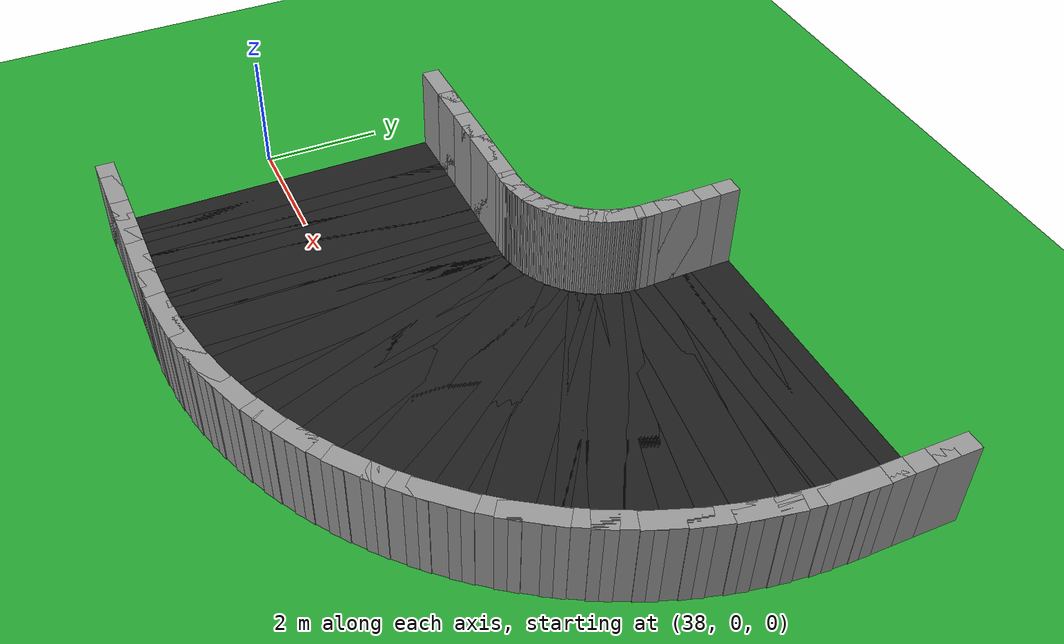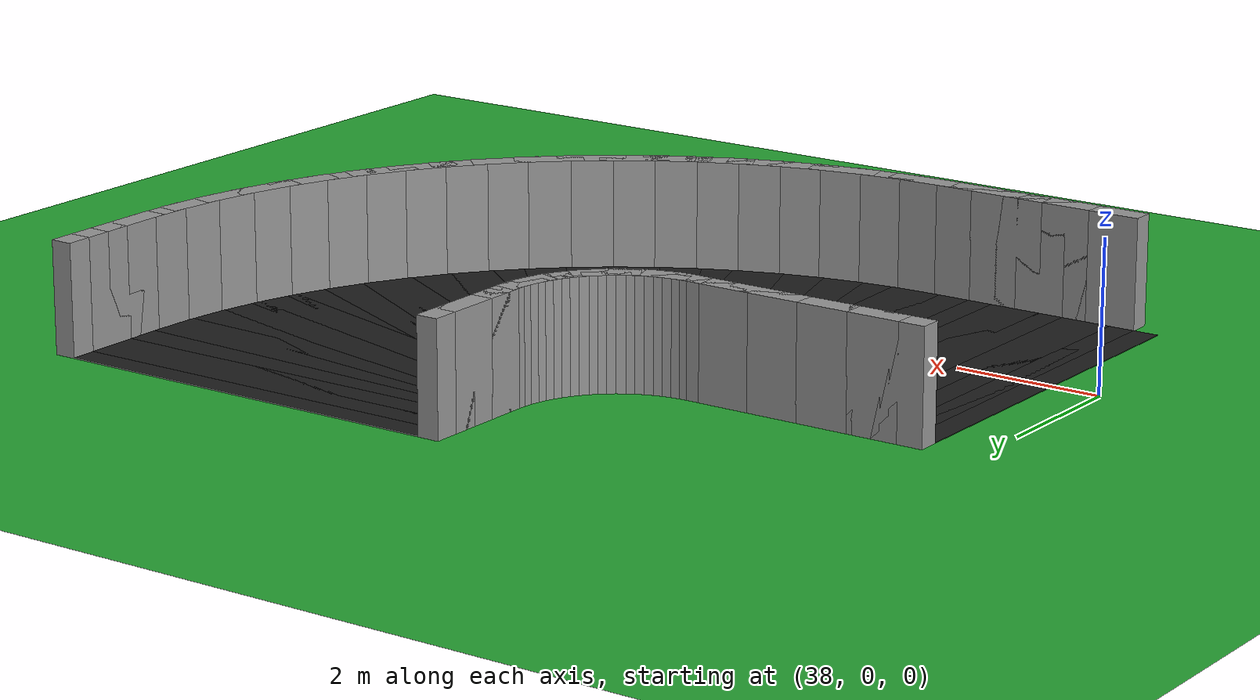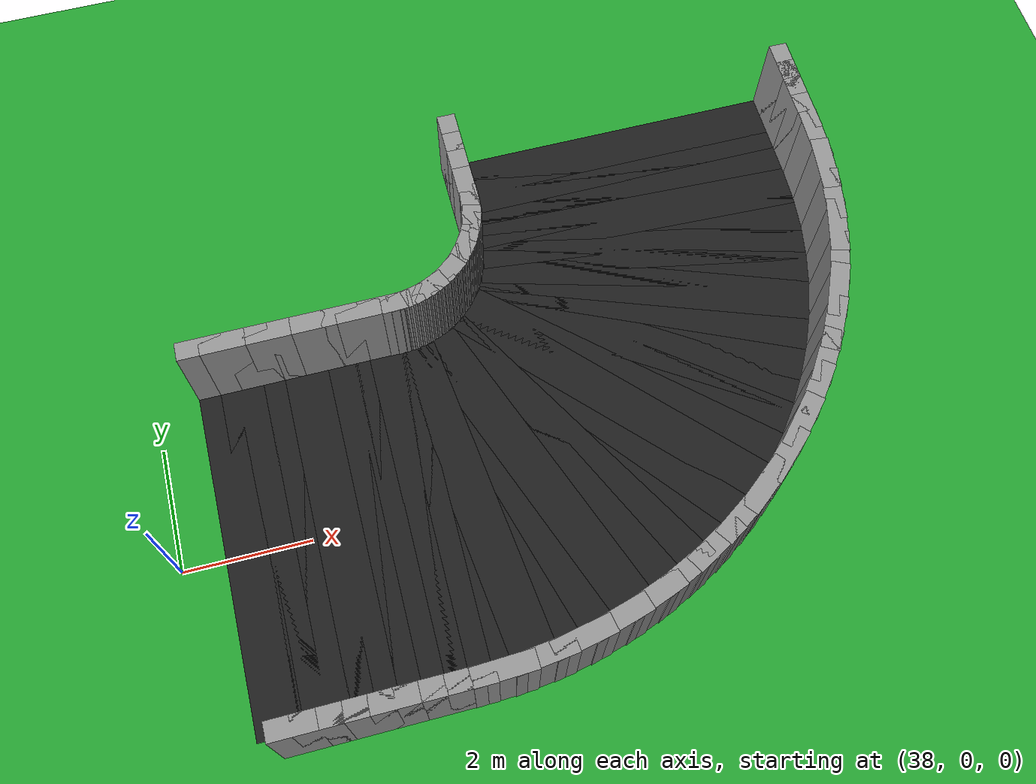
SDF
<sdf version="1.6">
 <world name="loop_speedloop">
  <include><uri>model://sun</uri></include>
  <model name="ground_plane">
   <static>true</static>
   <link name="link">
    <collision name="collision">
     <surface><friction><ode><mu>100</mu><mu2>50</mu2></ode></friction></surface>
     <geometry><plane><normal>0 0 1</normal><size>120 120</size></plane></geometry>
    </collision>
    <visual name="visual">
     <geometry><plane><normal>0 0 1</normal><size>120 120</size></plane></geometry>
     <material>
      <script><uri>file://media/materials/scripts/gazebo.material</uri><name>Gazebo/Green</name></script>
     </material>
    </visual>
   </link>
  </model>
  <model name="asphalt_111">
   <static>true</static>
   <pose>39.025 0.000 0.005 0 0 0.00000</pose>
   <link name="link">
    <visual name="visual">
     <geometry><box><size>0.710 5.500 0.010</size></box></geometry>
     <material>
      <script><uri>file://media/materials/scripts/gazebo.material</uri><name>Gazebo/Black</name></script>
     </material>
    </visual>
   </link>
  </model>
  <model name="curbL_111">
   <static>true</static>
   <pose>39.025 2.900 0.750 0 0 0.00000</pose>
   <link name="link">
    <collision name="collision"><geometry><box><size>0.710 0.300 1.500</size></box></geometry></collision>
    <visual name="visual">
     <geometry><box><size>0.710 0.300 1.500</size></box></geometry>
     <material>
      <script><uri>file://media/materials/scripts/gazebo.material</uri><name>Gazebo/Grey</name></script>
     </material>
    </visual>
   </link>
  </model>
  <model name="asphalt_112">
   <static>true</static>
   <pose>39.375 0.000 0.005 0 0 0.00000</pose>
   <link name="link">
    <visual name="visual">
     <geometry><box><size>0.710 5.500 0.010</size></box></geometry>
     <material>
      <script><uri>file://media/materials/scripts/gazebo.material</uri><name>Gazebo/Black</name></script>
     </material>
    </visual>
   </link>
  </model>
  <model name="curbL_112">
   <static>true</static>
   <pose>39.375 2.900 0.750 0 0 0.00000</pose>
   <link name="link">
    <collision name="collision"><geometry><box><size>0.710 0.300 1.500</size></box></geometry></collision>
    <visual name="visual">
     <geometry><box><size>0.710 0.300 1.500</size></box></geometry>
     <material>
      <script><uri>file://media/materials/scripts/gazebo.material</uri><name>Gazebo/Grey</name></script>
     </material>
    </visual>
   </link>
  </model>
  <model name="curbR_112">
   <static>true</static>
   <pose>39.375 -2.900 0.750 0 0 0.00000</pose>
   <link name="link">
    <collision name="collision"><geometry><box><size>0.710 0.300 1.500</size></box></geometry></collision>
    <visual name="visual">
     <geometry><box><size>0.710 0.300 1.500</size></box></geometry>
     <material>
      <script><uri>file://media/materials/scripts/gazebo.material</uri><name>Gazebo/Grey</name></script>
     </material>
    </visual>
   </link>
  </model>
  <model name="asphalt_113">
   <static>true</static>
   <pose>39.725 0.000 0.005 0 0 0.00000</pose>
   <link name="link">
    <visual name="visual">
     <geometry><box><size>0.710 5.500 0.010</size></box></geometry>
     <material>
      <script><uri>file://media/materials/scripts/gazebo.material</uri><name>Gazebo/Black</name></script>
     </material>
    </visual>
   </link>
  </model>
  <model name="curbL_113">
   <static>true</static>
   <pose>39.725 2.900 0.750 0 0 0.00000</pose>
   <link name="link">
    <collision name="collision"><geometry><box><size>0.710 0.300 1.500</size></box></geometry></collision>
    <visual name="visual">
     <geometry><box><size>0.710 0.300 1.500</size></box></geometry>
     <material>
      <script><uri>file://media/materials/scripts/gazebo.material</uri><name>Gazebo/Grey</name></script>
     </material>
    </visual>
   </link>
  </model>
  <model name="curbR_113">
   <static>true</static>
   <pose>39.725 -2.900 0.750 0 0 0.00000</pose>
   <link name="link">
    <collision name="collision"><geometry><box><size>0.710 0.300 1.500</size></box></geometry></collision>
    <visual name="visual">
     <geometry><box><size>0.710 0.300 1.500</size></box></geometry>
     <material>
      <script><uri>file://media/materials/scripts/gazebo.material</uri><name>Gazebo/Grey</name></script>
     </material>
    </visual>
   </link>
  </model>
  <model name="asphalt_114">
   <static>true</static>
   <pose>40.075 0.000 0.005 0 0 0.00000</pose>
   <link name="link">
    <visual name="visual">
     <geometry><box><size>0.710 5.500 0.010</size></box></geometry>
     <material>
      <script><uri>file://media/materials/scripts/gazebo.material</uri><name>Gazebo/Black</name></script>
     </material>
    </visual>
   </link>
  </model>
  <model name="curbL_114">
   <static>true</static>
   <pose>40.075 2.900 0.750 0 0 0.00000</pose>
   <link name="link">
    <collision name="collision"><geometry><box><size>0.710 0.300 1.500</size></box></geometry></collision>
    <visual name="visual">
     <geometry><box><size>0.710 0.300 1.500</size></box></geometry>
     <material>
      <script><uri>file://media/materials/scripts/gazebo.material</uri><name>Gazebo/Grey</name></script>
     </material>
    </visual>
   </link>
  </model>
  <model name="curbR_114">
   <static>true</static>
   <pose>40.075 -2.900 0.750 0 0 0.00000</pose>
   <link name="link">
    <collision name="collision"><geometry><box><size>0.710 0.300 1.500</size></box></geometry></collision>
    <visual name="visual">
     <geometry><box><size>0.710 0.300 1.500</size></box></geometry>
     <material>
      <script><uri>file://media/materials/scripts/gazebo.material</uri><name>Gazebo/Grey</name></script>
     </material>
    </visual>
   </link>
  </model>
  <model name="asphalt_115">
   <static>true</static>
   <pose>40.425 0.000 0.005 0 0 0.00000</pose>
   <link name="link">
    <visual name="visual">
     <geometry><box><size>0.710 5.500 0.010</size></box></geometry>
     <material>
      <script><uri>file://media/materials/scripts/gazebo.material</uri><name>Gazebo/Black</name></script>
     </material>
    </visual>
   </link>
  </model>
  <model name="curbL_115">
   <static>true</static>
   <pose>40.425 2.900 0.750 0 0 0.00000</pose>
   <link name="link">
    <collision name="collision"><geometry><box><size>0.710 0.300 1.500</size></box></geometry></collision>
    <visual name="visual">
     <geometry><box><size>0.710 0.300 1.500</size></box></geometry>
     <material>
      <script><uri>file://media/materials/scripts/gazebo.material</uri><name>Gazebo/Grey</name></script>
     </material>
    </visual>
   </link>
  </model>
  <model name="curbR_115">
   <static>true</static>
   <pose>40.425 -2.900 0.750 0 0 0.00000</pose>
   <link name="link">
    <collision name="collision"><geometry><box><size>0.710 0.300 1.500</size></box></geometry></collision>
    <visual name="visual">
     <geometry><box><size>0.710 0.300 1.500</size></box></geometry>
     <material>
      <script><uri>file://media/materials/scripts/gazebo.material</uri><name>Gazebo/Grey</name></script>
     </material>
    </visual>
   </link>
  </model>
  <model name="asphalt_116">
   <static>true</static>
   <pose>40.775 0.000 0.005 0 0 0.00000</pose>
   <link name="link">
    <visual name="visual">
     <geometry><box><size>0.710 5.500 0.010</size></box></geometry>
     <material>
      <script><uri>file://media/materials/scripts/gazebo.material</uri><name>Gazebo/Black</name></script>
     </material>
    </visual>
   </link>
  </model>
  <model name="curbL_116">
   <static>true</static>
   <pose>40.775 2.900 0.750 0 0 0.00000</pose>
   <link name="link">
    <collision name="collision"><geometry><box><size>0.710 0.300 1.500</size></box></geometry></collision>
    <visual name="visual">
     <geometry><box><size>0.710 0.300 1.500</size></box></geometry>
     <material>
      <script><uri>file://media/materials/scripts/gazebo.material</uri><name>Gazebo/Grey</name></script>
     </material>
    </visual>
   </link>
  </model>
  <model name="curbR_116">
   <static>true</static>
   <pose>40.775 -2.900 0.750 0 0 0.00000</pose>
   <link name="link">
    <collision name="collision"><geometry><box><size>0.710 0.300 1.500</size></box></geometry></collision>
    <visual name="visual">
     <geometry><box><size>0.710 0.300 1.500</size></box></geometry>
     <material>
      <script><uri>file://media/materials/scripts/gazebo.material</uri><name>Gazebo/Grey</name></script>
     </material>
    </visual>
   </link>
  </model>
  <model name="asphalt_117">
   <static>true</static>
   <pose>41.125 0.000 0.005 0 0 0.00000</pose>
   <link name="link">
    <visual name="visual">
     <geometry><box><size>0.710 5.500 0.010</size></box></geometry>
     <material>
      <script><uri>file://media/materials/scripts/gazebo.material</uri><name>Gazebo/Black</name></script>
     </material>
    </visual>
   </link>
  </model>
  <model name="curbL_117">
   <static>true</static>
   <pose>41.125 2.900 0.750 0 0 0.00000</pose>
   <link name="link">
    <collision name="collision"><geometry><box><size>0.710 0.300 1.500</size></box></geometry></collision>
    <visual name="visual">
     <geometry><box><size>0.710 0.300 1.500</size></box></geometry>
     <material>
      <script><uri>file://media/materials/scripts/gazebo.material</uri><name>Gazebo/Grey</name></script>
     </material>
    </visual>
   </link>
  </model>
  <model name="curbR_117">
   <static>true</static>
   <pose>41.125 -2.900 0.750 0 0 0.00000</pose>
   <link name="link">
    <collision name="collision"><geometry><box><size>0.710 0.300 1.500</size></box></geometry></collision>
    <visual name="visual">
     <geometry><box><size>0.710 0.300 1.500</size></box></geometry>
     <material>
      <script><uri>file://media/materials/scripts/gazebo.material</uri><name>Gazebo/Grey</name></script>
     </material>
    </visual>
   </link>
  </model>
  <model name="asphalt_118">
   <static>true</static>
   <pose>41.475 0.000 0.005 0 0 0.00000</pose>
   <link name="link">
    <visual name="visual">
     <geometry><box><size>0.710 5.500 0.010</size></box></geometry>
     <material>
      <script><uri>file://media/materials/scripts/gazebo.material</uri><name>Gazebo/Black</name></script>
     </material>
    </visual>
   </link>
  </model>
  <model name="curbL_118">
   <static>true</static>
   <pose>41.475 2.900 0.750 0 0 0.00000</pose>
   <link name="link">
    <collision name="collision"><geometry><box><size>0.710 0.300 1.500</size></box></geometry></collision>
    <visual name="visual">
     <geometry><box><size>0.710 0.300 1.500</size></box></geometry>
     <material>
      <script><uri>file://media/materials/scripts/gazebo.material</uri><name>Gazebo/Grey</name></script>
     </material>
    </visual>
   </link>
  </model>
  <model name="curbR_118">
   <static>true</static>
   <pose>41.475 -2.900 0.750 0 0 0.00000</pose>
   <link name="link">
    <collision name="collision"><geometry><box><size>0.710 0.300 1.500</size></box></geometry></collision>
    <visual name="visual">
     <geometry><box><size>0.710 0.300 1.500</size></box></geometry>
     <material>
      <script><uri>file://media/materials/scripts/gazebo.material</uri><name>Gazebo/Grey</name></script>
     </material>
    </visual>
   </link>
  </model>
  <model name="asphalt_119">
   <static>true</static>
   <pose>41.825 0.000 0.005 0 0 0.00000</pose>
   <link name="link">
    <visual name="visual">
     <geometry><box><size>0.710 5.500 0.010</size></box></geometry>
     <material>
      <script><uri>file://media/materials/scripts/gazebo.material</uri><name>Gazebo/Black</name></script>
     </material>
    </visual>
   </link>
  </model>
  <model name="curbL_119">
   <static>true</static>
   <pose>41.825 2.900 0.750 0 0 0.00000</pose>
   <link name="link">
    <collision name="collision"><geometry><box><size>0.710 0.300 1.500</size></box></geometry></collision>
    <visual name="visual">
     <geometry><box><size>0.710 0.300 1.500</size></box></geometry>
     <material>
      <script><uri>file://media/materials/scripts/gazebo.material</uri><name>Gazebo/Grey</name></script>
     </material>
    </visual>
   </link>
  </model>
  <model name="curbR_119">
   <static>true</static>
   <pose>41.825 -2.900 0.750 0 0 0.00000</pose>
   <link name="link">
    <collision name="collision"><geometry><box><size>0.710 0.300 1.500</size></box></geometry></collision>
    <visual name="visual">
     <geometry><box><size>0.710 0.300 1.500</size></box></geometry>
     <material>
      <script><uri>file://media/materials/scripts/gazebo.material</uri><name>Gazebo/Grey</name></script>
     </material>
    </visual>
   </link>
  </model>
  <model name="asphalt_120">
   <static>true</static>
   <pose>42.177 0.007 0.005 0 0 0.03927</pose>
   <link name="link">
    <visual name="visual">
     <geometry><box><size>0.713 5.500 0.010</size></box></geometry>
     <material>
      <script><uri>file://media/materials/scripts/gazebo.material</uri><name>Gazebo/Black</name></script>
     </material>
    </visual>
   </link>
  </model>
  <model name="curbL_120">
   <static>true</static>
   <pose>42.063 2.902 0.750 0 0 0.03927</pose>
   <link name="link">
    <collision name="collision"><geometry><box><size>0.486 0.300 1.500</size></box></geometry></collision>
    <visual name="visual">
     <geometry><box><size>0.486 0.300 1.500</size></box></geometry>
     <material>
      <script><uri>file://media/materials/scripts/gazebo.material</uri><name>Gazebo/Grey</name></script>
     </material>
    </visual>
   </link>
  </model>
  <model name="curbR_120">
   <static>true</static>
   <pose>42.290 -2.889 0.750 0 0 0.03927</pose>
   <link name="link">
    <collision name="collision"><geometry><box><size>0.941 0.300 1.500</size></box></geometry></collision>
    <visual name="visual">
     <geometry><box><size>0.941 0.300 1.500</size></box></geometry>
     <material>
      <script><uri>file://media/materials/scripts/gazebo.material</uri><name>Gazebo/Grey</name></script>
     </material>
    </visual>
   </link>
  </model>
  <model name="asphalt_121">
   <static>true</static>
   <pose>42.529 0.035 0.005 0 0 0.11781</pose>
   <link name="link">
    <visual name="visual">
     <geometry><box><size>0.713 5.500 0.010</size></box></geometry>
     <material>
      <script><uri>file://media/materials/scripts/gazebo.material</uri><name>Gazebo/Black</name></script>
     </material>
    </visual>
   </link>
  </model>
  <model name="curbL_121">
   <static>true</static>
   <pose>42.188 2.912 0.750 0 0 0.11781</pose>
   <link name="link">
    <collision name="collision"><geometry><box><size>0.486 0.300 1.500</size></box></geometry></collision>
    <visual name="visual">
     <geometry><box><size>0.486 0.300 1.500</size></box></geometry>
     <material>
      <script><uri>file://media/materials/scripts/gazebo.material</uri><name>Gazebo/Grey</name></script>
     </material>
    </visual>
   </link>
  </model>
  <model name="curbR_121">
   <static>true</static>
   <pose>42.869 -2.843 0.750 0 0 0.11781</pose>
   <link name="link">
    <collision name="collision"><geometry><box><size>0.941 0.300 1.500</size></box></geometry></collision>
    <visual name="visual">
     <geometry><box><size>0.941 0.300 1.500</size></box></geometry>
     <material>
      <script><uri>file://media/materials/scripts/gazebo.material</uri><name>Gazebo/Grey</name></script>
     </material>
    </visual>
   </link>
  </model>
  <model name="asphalt_122">
   <static>true</static>
   <pose>42.877 0.090 0.005 0 0 0.19635</pose>
   <link name="link">
    <visual name="visual">
     <geometry><box><size>0.713 5.500 0.010</size></box></geometry>
     <material>
      <script><uri>file://media/materials/scripts/gazebo.material</uri><name>Gazebo/Black</name></script>
     </material>
    </visual>
   </link>
  </model>
  <model name="curbL_122">
   <static>true</static>
   <pose>42.312 2.932 0.750 0 0 0.19635</pose>
   <link name="link">
    <collision name="collision"><geometry><box><size>0.486 0.300 1.500</size></box></geometry></collision>
    <visual name="visual">
     <geometry><box><size>0.486 0.300 1.500</size></box></geometry>
     <material>
      <script><uri>file://media/materials/scripts/gazebo.material</uri><name>Gazebo/Grey</name></script>
     </material>
    </visual>
   </link>
  </model>
  <model name="curbR_122">
   <static>true</static>
   <pose>43.443 -2.752 0.750 0 0 0.19635</pose>
   <link name="link">
    <collision name="collision"><geometry><box><size>0.941 0.300 1.500</size></box></geometry></collision>
    <visual name="visual">
     <geometry><box><size>0.941 0.300 1.500</size></box></geometry>
     <material>
      <script><uri>file://media/materials/scripts/gazebo.material</uri><name>Gazebo/Grey</name></script>
     </material>
    </visual>
   </link>
  </model>
  <model name="asphalt_123">
   <static>true</static>
   <pose>43.221 0.172 0.005 0 0 0.27489</pose>
   <link name="link">
    <visual name="visual">
     <geometry><box><size>0.713 5.500 0.010</size></box></geometry>
     <material>
      <script><uri>file://media/materials/scripts/gazebo.material</uri><name>Gazebo/Black</name></script>
     </material>
    </visual>
   </link>
  </model>
  <model name="curbL_123">
   <static>true</static>
   <pose>42.434 2.961 0.750 0 0 0.27489</pose>
   <link name="link">
    <collision name="collision"><geometry><box><size>0.486 0.300 1.500</size></box></geometry></collision>
    <visual name="visual">
     <geometry><box><size>0.486 0.300 1.500</size></box></geometry>
     <material>
      <script><uri>file://media/materials/scripts/gazebo.material</uri><name>Gazebo/Grey</name></script>
     </material>
    </visual>
   </link>
  </model>
  <model name="curbR_123">
   <static>true</static>
   <pose>44.007 -2.617 0.750 0 0 0.27489</pose>
   <link name="link">
    <collision name="collision"><geometry><box><size>0.941 0.300 1.500</size></box></geometry></collision>
    <visual name="visual">
     <geometry><box><size>0.941 0.300 1.500</size></box></geometry>
     <material>
      <script><uri>file://media/materials/scripts/gazebo.material</uri><name>Gazebo/Grey</name></script>
     </material>
    </visual>
   </link>
  </model>
  <model name="asphalt_124">
   <static>true</static>
   <pose>43.557 0.281 0.005 0 0 0.35343</pose>
   <link name="link">
    <visual name="visual">
     <geometry><box><size>0.713 5.500 0.010</size></box></geometry>
     <material>
      <script><uri>file://media/materials/scripts/gazebo.material</uri><name>Gazebo/Black</name></script>
     </material>
    </visual>
   </link>
  </model>
  <model name="curbL_124">
   <static>true</static>
   <pose>42.554 3.000 0.750 0 0 0.35343</pose>
   <link name="link">
    <collision name="collision"><geometry><box><size>0.486 0.300 1.500</size></box></geometry></collision>
    <visual name="visual">
     <geometry><box><size>0.486 0.300 1.500</size></box></geometry>
     <material>
      <script><uri>file://media/materials/scripts/gazebo.material</uri><name>Gazebo/Grey</name></script>
     </material>
    </visual>
   </link>
  </model>
  <model name="curbR_124">
   <static>true</static>
   <pose>44.560 -2.437 0.750 0 0 0.35343</pose>
   <link name="link">
    <collision name="collision"><geometry><box><size>0.941 0.300 1.500</size></box></geometry></collision>
    <visual name="visual">
     <geometry><box><size>0.941 0.300 1.500</size></box></geometry>
     <material>
      <script><uri>file://media/materials/scripts/gazebo.material</uri><name>Gazebo/Grey</name></script>
     </material>
    </visual>
   </link>
  </model>
  <model name="asphalt_125">
   <static>true</static>
   <pose>43.883 0.417 0.005 0 0 0.43197</pose>
   <link name="link">
    <visual name="visual">
     <geometry><box><size>0.713 5.500 0.010</size></box></geometry>
     <material>
      <script><uri>file://media/materials/scripts/gazebo.material</uri><name>Gazebo/Black</name></script>
     </material>
    </visual>
   </link>
  </model>
  <model name="curbL_125">
   <static>true</static>
   <pose>42.670 3.048 0.750 0 0 0.43197</pose>
   <link name="link">
    <collision name="collision"><geometry><box><size>0.486 0.300 1.500</size></box></geometry></collision>
    <visual name="visual">
     <geometry><box><size>0.486 0.300 1.500</size></box></geometry>
     <material>
      <script><uri>file://media/materials/scripts/gazebo.material</uri><name>Gazebo/Grey</name></script>
     </material>
    </visual>
   </link>
  </model>
  <model name="curbR_125">
   <static>true</static>
   <pose>45.096 -2.215 0.750 0 0 0.43197</pose>
   <link name="link">
    <collision name="collision"><geometry><box><size>0.941 0.300 1.500</size></box></geometry></collision>
    <visual name="visual">
     <geometry><box><size>0.941 0.300 1.500</size></box></geometry>
     <material>
      <script><uri>file://media/materials/scripts/gazebo.material</uri><name>Gazebo/Grey</name></script>
     </material>
    </visual>
   </link>
  </model>
  <model name="asphalt_126">
   <static>true</static>
   <pose>44.198 0.577 0.005 0 0 0.51051</pose>
   <link name="link">
    <visual name="visual">
     <geometry><box><size>0.713 5.500 0.010</size></box></geometry>
     <material>
      <script><uri>file://media/materials/scripts/gazebo.material</uri><name>Gazebo/Black</name></script>
     </material>
    </visual>
   </link>
  </model>
  <model name="curbL_126">
   <static>true</static>
   <pose>42.782 3.105 0.750 0 0 0.51051</pose>
   <link name="link">
    <collision name="collision"><geometry><box><size>0.486 0.300 1.500</size></box></geometry></collision>
    <visual name="visual">
     <geometry><box><size>0.486 0.300 1.500</size></box></geometry>
     <material>
      <script><uri>file://media/materials/scripts/gazebo.material</uri><name>Gazebo/Grey</name></script>
     </material>
    </visual>
   </link>
  </model>
  <model name="curbR_126">
   <static>true</static>
   <pose>45.614 -1.951 0.750 0 0 0.51051</pose>
   <link name="link">
    <collision name="collision"><geometry><box><size>0.941 0.300 1.500</size></box></geometry></collision>
    <visual name="visual">
     <geometry><box><size>0.941 0.300 1.500</size></box></geometry>
     <material>
      <script><uri>file://media/materials/scripts/gazebo.material</uri><name>Gazebo/Grey</name></script>
     </material>
    </visual>
   </link>
  </model>
  <model name="asphalt_127">
   <static>true</static>
   <pose>44.499 0.761 0.005 0 0 0.58905</pose>
   <link name="link">
    <visual name="visual">
     <geometry><box><size>0.713 5.500 0.010</size></box></geometry>
     <material>
      <script><uri>file://media/materials/scripts/gazebo.material</uri><name>Gazebo/Black</name></script>
     </material>
    </visual>
   </link>
  </model>
  <model name="curbL_127">
   <static>true</static>
   <pose>42.889 3.171 0.750 0 0 0.58905</pose>
   <link name="link">
    <collision name="collision"><geometry><box><size>0.486 0.300 1.500</size></box></geometry></collision>
    <visual name="visual">
     <geometry><box><size>0.486 0.300 1.500</size></box></geometry>
     <material>
      <script><uri>file://media/materials/scripts/gazebo.material</uri><name>Gazebo/Grey</name></script>
     </material>
    </visual>
   </link>
  </model>
  <model name="curbR_127">
   <static>true</static>
   <pose>46.109 -1.648 0.750 0 0 0.58905</pose>
   <link name="link">
    <collision name="collision"><geometry><box><size>0.941 0.300 1.500</size></box></geometry></collision>
    <visual name="visual">
     <geometry><box><size>0.941 0.300 1.500</size></box></geometry>
     <material>
      <script><uri>file://media/materials/scripts/gazebo.material</uri><name>Gazebo/Grey</name></script>
     </material>
    </visual>
   </link>
  </model>
  <model name="asphalt_128">
   <static>true</static>
   <pose>44.784 0.969 0.005 0 0 0.66759</pose>
   <link name="link">
    <visual name="visual">
     <geometry><box><size>0.713 5.500 0.010</size></box></geometry>
     <material>
      <script><uri>file://media/materials/scripts/gazebo.material</uri><name>Gazebo/Black</name></script>
     </material>
    </visual>
   </link>
  </model>
  <model name="curbL_128">
   <static>true</static>
   <pose>42.991 3.245 0.750 0 0 0.66759</pose>
   <link name="link">
    <collision name="collision"><geometry><box><size>0.486 0.300 1.500</size></box></geometry></collision>
    <visual name="visual">
     <geometry><box><size>0.486 0.300 1.500</size></box></geometry>
     <material>
      <script><uri>file://media/materials/scripts/gazebo.material</uri><name>Gazebo/Grey</name></script>
     </material>
    </visual>
   </link>
  </model>
  <model name="curbR_128">
   <static>true</static>
   <pose>46.578 -1.307 0.750 0 0 0.66759</pose>
   <link name="link">
    <collision name="collision"><geometry><box><size>0.941 0.300 1.500</size></box></geometry></collision>
    <visual name="visual">
     <geometry><box><size>0.941 0.300 1.500</size></box></geometry>
     <material>
      <script><uri>file://media/materials/scripts/gazebo.material</uri><name>Gazebo/Grey</name></script>
     </material>
    </visual>
   </link>
  </model>
  <model name="asphalt_129">
   <static>true</static>
   <pose>45.053 1.198 0.005 0 0 0.74613</pose>
   <link name="link">
    <visual name="visual">
     <geometry><box><size>0.713 5.500 0.010</size></box></geometry>
     <material>
      <script><uri>file://media/materials/scripts/gazebo.material</uri><name>Gazebo/Black</name></script>
     </material>
    </visual>
   </link>
  </model>
  <model name="curbL_129">
   <static>true</static>
   <pose>43.086 3.326 0.750 0 0 0.74613</pose>
   <link name="link">
    <collision name="collision"><geometry><box><size>0.486 0.300 1.500</size></box></geometry></collision>
    <visual name="visual">
     <geometry><box><size>0.486 0.300 1.500</size></box></geometry>
     <material>
      <script><uri>file://media/materials/scripts/gazebo.material</uri><name>Gazebo/Grey</name></script>
     </material>
    </visual>
   </link>
  </model>
  <model name="curbR_129">
   <static>true</static>
   <pose>47.020 -0.929 0.750 0 0 0.74613</pose>
   <link name="link">
    <collision name="collision"><geometry><box><size>0.941 0.300 1.500</size></box></geometry></collision>
    <visual name="visual">
     <geometry><box><size>0.941 0.300 1.500</size></box></geometry>
     <material>
      <script><uri>file://media/materials/scripts/gazebo.material</uri><name>Gazebo/Grey</name></script>
     </material>
    </visual>
   </link>
  </model>
  <model name="asphalt_130">
   <static>true</static>
   <pose>45.303 1.448 0.005 0 0 0.82467</pose>
   <link name="link">
    <visual name="visual">
     <geometry><box><size>0.713 5.500 0.010</size></box></geometry>
     <material>
      <script><uri>file://media/materials/scripts/gazebo.material</uri><name>Gazebo/Black</name></script>
     </material>
    </visual>
   </link>
  </model>
  <model name="curbL_130">
   <static>true</static>
   <pose>43.175 3.415 0.750 0 0 0.82467</pose>
   <link name="link">
    <collision name="collision"><geometry><box><size>0.486 0.300 1.500</size></box></geometry></collision>
    <visual name="visual">
     <geometry><box><size>0.486 0.300 1.500</size></box></geometry>
     <material>
      <script><uri>file://media/materials/scripts/gazebo.material</uri><name>Gazebo/Grey</name></script>
     </material>
    </visual>
   </link>
  </model>
  <model name="curbR_130">
   <static>true</static>
   <pose>47.431 -0.519 0.750 0 0 0.82467</pose>
   <link name="link">
    <collision name="collision"><geometry><box><size>0.941 0.300 1.500</size></box></geometry></collision>
    <visual name="visual">
     <geometry><box><size>0.941 0.300 1.500</size></box></geometry>
     <material>
      <script><uri>file://media/materials/scripts/gazebo.material</uri><name>Gazebo/Grey</name></script>
     </material>
    </visual>
   </link>
  </model>
  <model name="asphalt_131">
   <static>true</static>
   <pose>45.532 1.717 0.005 0 0 0.90321</pose>
   <link name="link">
    <visual name="visual">
     <geometry><box><size>0.713 5.500 0.010</size></box></geometry>
     <material>
      <script><uri>file://media/materials/scripts/gazebo.material</uri><name>Gazebo/Black</name></script>
     </material>
    </visual>
   </link>
  </model>
  <model name="curbL_131">
   <static>true</static>
   <pose>43.256 3.511 0.750 0 0 0.90321</pose>
   <link name="link">
    <collision name="collision"><geometry><box><size>0.486 0.300 1.500</size></box></geometry></collision>
    <visual name="visual">
     <geometry><box><size>0.486 0.300 1.500</size></box></geometry>
     <material>
      <script><uri>file://media/materials/scripts/gazebo.material</uri><name>Gazebo/Grey</name></script>
     </material>
    </visual>
   </link>
  </model>
  <model name="curbR_131">
   <static>true</static>
   <pose>47.808 -0.077 0.750 0 0 0.90321</pose>
   <link name="link">
    <collision name="collision"><geometry><box><size>0.941 0.300 1.500</size></box></geometry></collision>
    <visual name="visual">
     <geometry><box><size>0.941 0.300 1.500</size></box></geometry>
     <material>
      <script><uri>file://media/materials/scripts/gazebo.material</uri><name>Gazebo/Grey</name></script>
     </material>
    </visual>
   </link>
  </model>
  <model name="asphalt_132">
   <static>true</static>
   <pose>45.740 2.002 0.005 0 0 0.98175</pose>
   <link name="link">
    <visual name="visual">
     <geometry><box><size>0.713 5.500 0.010</size></box></geometry>
     <material>
      <script><uri>file://media/materials/scripts/gazebo.material</uri><name>Gazebo/Black</name></script>
     </material>
    </visual>
   </link>
  </model>
  <model name="curbL_132">
   <static>true</static>
   <pose>43.330 3.612 0.750 0 0 0.98175</pose>
   <link name="link">
    <collision name="collision"><geometry><box><size>0.486 0.300 1.500</size></box></geometry></collision>
    <visual name="visual">
     <geometry><box><size>0.486 0.300 1.500</size></box></geometry>
     <material>
      <script><uri>file://media/materials/scripts/gazebo.material</uri><name>Gazebo/Grey</name></script>
     </material>
    </visual>
   </link>
  </model>
  <model name="curbR_132">
   <static>true</static>
   <pose>48.149 0.392 0.750 0 0 0.98175</pose>
   <link name="link">
    <collision name="collision"><geometry><box><size>0.941 0.300 1.500</size></box></geometry></collision>
    <visual name="visual">
     <geometry><box><size>0.941 0.300 1.500</size></box></geometry>
     <material>
      <script><uri>file://media/materials/scripts/gazebo.material</uri><name>Gazebo/Grey</name></script>
     </material>
    </visual>
   </link>
  </model>
  <model name="asphalt_133">
   <static>true</static>
   <pose>45.924 2.303 0.005 0 0 1.06029</pose>
   <link name="link">
    <visual name="visual">
     <geometry><box><size>0.713 5.500 0.010</size></box></geometry>
     <material>
      <script><uri>file://media/materials/scripts/gazebo.material</uri><name>Gazebo/Black</name></script>
     </material>
    </visual>
   </link>
  </model>
  <model name="curbL_133">
   <static>true</static>
   <pose>43.396 3.719 0.750 0 0 1.06029</pose>
   <link name="link">
    <collision name="collision"><geometry><box><size>0.486 0.300 1.500</size></box></geometry></collision>
    <visual name="visual">
     <geometry><box><size>0.486 0.300 1.500</size></box></geometry>
     <material>
      <script><uri>file://media/materials/scripts/gazebo.material</uri><name>Gazebo/Grey</name></script>
     </material>
    </visual>
   </link>
  </model>
  <model name="curbR_133">
   <static>true</static>
   <pose>48.453 0.888 0.750 0 0 1.06029</pose>
   <link name="link">
    <collision name="collision"><geometry><box><size>0.941 0.300 1.500</size></box></geometry></collision>
    <visual name="visual">
     <geometry><box><size>0.941 0.300 1.500</size></box></geometry>
     <material>
      <script><uri>file://media/materials/scripts/gazebo.material</uri><name>Gazebo/Grey</name></script>
     </material>
    </visual>
   </link>
  </model>
  <model name="asphalt_134">
   <static>true</static>
   <pose>46.085 2.618 0.005 0 0 1.13883</pose>
   <link name="link">
    <visual name="visual">
     <geometry><box><size>0.713 5.500 0.010</size></box></geometry>
     <material>
      <script><uri>file://media/materials/scripts/gazebo.material</uri><name>Gazebo/Black</name></script>
     </material>
    </visual>
   </link>
  </model>
  <model name="curbL_134">
   <static>true</static>
   <pose>43.453 3.831 0.750 0 0 1.13883</pose>
   <link name="link">
    <collision name="collision"><geometry><box><size>0.486 0.300 1.500</size></box></geometry></collision>
    <visual name="visual">
     <geometry><box><size>0.486 0.300 1.500</size></box></geometry>
     <material>
      <script><uri>file://media/materials/scripts/gazebo.material</uri><name>Gazebo/Grey</name></script>
     </material>
    </visual>
   </link>
  </model>
  <model name="curbR_134">
   <static>true</static>
   <pose>48.716 1.405 0.750 0 0 1.13883</pose>
   <link name="link">
    <collision name="collision"><geometry><box><size>0.941 0.300 1.500</size></box></geometry></collision>
    <visual name="visual">
     <geometry><box><size>0.941 0.300 1.500</size></box></geometry>
     <material>
      <script><uri>file://media/materials/scripts/gazebo.material</uri><name>Gazebo/Grey</name></script>
     </material>
    </visual>
   </link>
  </model>
  <model name="asphalt_135">
   <static>true</static>
   <pose>46.220 2.944 0.005 0 0 1.21737</pose>
   <link name="link">
    <visual name="visual">
     <geometry><box><size>0.713 5.500 0.010</size></box></geometry>
     <material>
      <script><uri>file://media/materials/scripts/gazebo.material</uri><name>Gazebo/Black</name></script>
     </material>
    </visual>
   </link>
  </model>
  <model name="curbL_135">
   <static>true</static>
   <pose>43.501 3.947 0.750 0 0 1.21737</pose>
   <link name="link">
    <collision name="collision"><geometry><box><size>0.486 0.300 1.500</size></box></geometry></collision>
    <visual name="visual">
     <geometry><box><size>0.486 0.300 1.500</size></box></geometry>
     <material>
      <script><uri>file://media/materials/scripts/gazebo.material</uri><name>Gazebo/Grey</name></script>
     </material>
    </visual>
   </link>
  </model>
  <model name="curbR_135">
   <static>true</static>
   <pose>48.938 1.941 0.750 0 0 1.21737</pose>
   <link name="link">
    <collision name="collision"><geometry><box><size>0.941 0.300 1.500</size></box></geometry></collision>
    <visual name="visual">
     <geometry><box><size>0.941 0.300 1.500</size></box></geometry>
     <material>
      <script><uri>file://media/materials/scripts/gazebo.material</uri><name>Gazebo/Grey</name></script>
     </material>
    </visual>
   </link>
  </model>
  <model name="asphalt_136">
   <static>true</static>
   <pose>46.329 3.280 0.005 0 0 1.29591</pose>
   <link name="link">
    <visual name="visual">
     <geometry><box><size>0.713 5.500 0.010</size></box></geometry>
     <material>
      <script><uri>file://media/materials/scripts/gazebo.material</uri><name>Gazebo/Black</name></script>
     </material>
    </visual>
   </link>
  </model>
  <model name="curbL_136">
   <static>true</static>
   <pose>43.540 4.067 0.750 0 0 1.29591</pose>
   <link name="link">
    <collision name="collision"><geometry><box><size>0.486 0.300 1.500</size></box></geometry></collision>
    <visual name="visual">
     <geometry><box><size>0.486 0.300 1.500</size></box></geometry>
     <material>
      <script><uri>file://media/materials/scripts/gazebo.material</uri><name>Gazebo/Grey</name></script>
     </material>
    </visual>
   </link>
  </model>
  <model name="curbR_136">
   <static>true</static>
   <pose>49.118 2.494 0.750 0 0 1.29591</pose>
   <link name="link">
    <collision name="collision"><geometry><box><size>0.941 0.300 1.500</size></box></geometry></collision>
    <visual name="visual">
     <geometry><box><size>0.941 0.300 1.500</size></box></geometry>
     <material>
      <script><uri>file://media/materials/scripts/gazebo.material</uri><name>Gazebo/Grey</name></script>
     </material>
    </visual>
   </link>
  </model>
  <model name="asphalt_137">
   <static>true</static>
   <pose>46.411 3.624 0.005 0 0 1.37445</pose>
   <link name="link">
    <visual name="visual">
     <geometry><box><size>0.713 5.500 0.010</size></box></geometry>
     <material>
      <script><uri>file://media/materials/scripts/gazebo.material</uri><name>Gazebo/Black</name></script>
     </material>
    </visual>
   </link>
  </model>
  <model name="curbL_137">
   <static>true</static>
   <pose>43.569 4.189 0.750 0 0 1.37445</pose>
   <link name="link">
    <collision name="collision"><geometry><box><size>0.486 0.300 1.500</size></box></geometry></collision>
    <visual name="visual">
     <geometry><box><size>0.486 0.300 1.500</size></box></geometry>
     <material>
      <script><uri>file://media/materials/scripts/gazebo.material</uri><name>Gazebo/Grey</name></script>
     </material>
    </visual>
   </link>
  </model>
  <model name="curbR_137">
   <static>true</static>
   <pose>49.253 3.058 0.750 0 0 1.37445</pose>
   <link name="link">
    <collision name="collision"><geometry><box><size>0.941 0.300 1.500</size></box></geometry></collision>
    <visual name="visual">
     <geometry><box><size>0.941 0.300 1.500</size></box></geometry>
     <material>
      <script><uri>file://media/materials/scripts/gazebo.material</uri><name>Gazebo/Grey</name></script>
     </material>
    </visual>
   </link>
  </model>
  <model name="asphalt_138">
   <static>true</static>
   <pose>46.467 3.973 0.005 0 0 1.45299</pose>
   <link name="link">
    <visual name="visual">
     <geometry><box><size>0.713 5.500 0.010</size></box></geometry>
     <material>
      <script><uri>file://media/materials/scripts/gazebo.material</uri><name>Gazebo/Black</name></script>
     </material>
    </visual>
   </link>
  </model>
  <model name="curbL_138">
   <static>true</static>
   <pose>43.589 4.313 0.750 0 0 1.45299</pose>
   <link name="link">
    <collision name="collision"><geometry><box><size>0.486 0.300 1.500</size></box></geometry></collision>
    <visual name="visual">
     <geometry><box><size>0.486 0.300 1.500</size></box></geometry>
     <material>
      <script><uri>file://media/materials/scripts/gazebo.material</uri><name>Gazebo/Grey</name></script>
     </material>
    </visual>
   </link>
  </model>
  <model name="curbR_138">
   <static>true</static>
   <pose>49.344 3.632 0.750 0 0 1.45299</pose>
   <link name="link">
    <collision name="collision"><geometry><box><size>0.941 0.300 1.500</size></box></geometry></collision>
    <visual name="visual">
     <geometry><box><size>0.941 0.300 1.500</size></box></geometry>
     <material>
      <script><uri>file://media/materials/scripts/gazebo.material</uri><name>Gazebo/Grey</name></script>
     </material>
    </visual>
   </link>
  </model>
  <model name="asphalt_139">
   <static>true</static>
   <pose>46.494 4.325 0.005 0 0 1.53153</pose>
   <link name="link">
    <visual name="visual">
     <geometry><box><size>0.713 5.500 0.010</size></box></geometry>
     <material>
      <script><uri>file://media/materials/scripts/gazebo.material</uri><name>Gazebo/Black</name></script>
     </material>
    </visual>
   </link>
  </model>
  <model name="curbL_139">
   <static>true</static>
   <pose>43.599 4.438 0.750 0 0 1.53153</pose>
   <link name="link">
    <collision name="collision"><geometry><box><size>0.486 0.300 1.500</size></box></geometry></collision>
    <visual name="visual">
     <geometry><box><size>0.486 0.300 1.500</size></box></geometry>
     <material>
      <script><uri>file://media/materials/scripts/gazebo.material</uri><name>Gazebo/Grey</name></script>
     </material>
    </visual>
   </link>
  </model>
  <model name="curbR_139">
   <static>true</static>
   <pose>49.390 4.211 0.750 0 0 1.53153</pose>
   <link name="link">
    <collision name="collision"><geometry><box><size>0.941 0.300 1.500</size></box></geometry></collision>
    <visual name="visual">
     <geometry><box><size>0.941 0.300 1.500</size></box></geometry>
     <material>
      <script><uri>file://media/materials/scripts/gazebo.material</uri><name>Gazebo/Grey</name></script>
     </material>
    </visual>
   </link>
  </model>
  <model name="asphalt_140">
   <static>true</static>
   <pose>46.501 4.677 0.005 0 0 1.57080</pose>
   <link name="link">
    <visual name="visual">
     <geometry><box><size>0.711 5.500 0.010</size></box></geometry>
     <material>
      <script><uri>file://media/materials/scripts/gazebo.material</uri><name>Gazebo/Black</name></script>
     </material>
    </visual>
   </link>
  </model>
  <model name="curbL_140">
   <static>true</static>
   <pose>43.601 4.677 0.750 0 0 1.57080</pose>
   <link name="link">
    <collision name="collision"><geometry><box><size>0.711 0.300 1.500</size></box></geometry></collision>
    <visual name="visual">
     <geometry><box><size>0.711 0.300 1.500</size></box></geometry>
     <material>
      <script><uri>file://media/materials/scripts/gazebo.material</uri><name>Gazebo/Grey</name></script>
     </material>
    </visual>
   </link>
  </model>
  <model name="curbR_140">
   <static>true</static>
   <pose>49.401 4.677 0.750 0 0 1.57080</pose>
   <link name="link">
    <collision name="collision"><geometry><box><size>0.711 0.300 1.500</size></box></geometry></collision>
    <visual name="visual">
     <geometry><box><size>0.711 0.300 1.500</size></box></geometry>
     <material>
      <script><uri>file://media/materials/scripts/gazebo.material</uri><name>Gazebo/Grey</name></script>
     </material>
    </visual>
   </link>
  </model>
  <model name="asphalt_141">
   <static>true</static>
   <pose>46.501 5.027 0.005 0 0 1.57080</pose>
   <link name="link">
    <visual name="visual">
     <geometry><box><size>0.711 5.500 0.010</size></box></geometry>
     <material>
      <script><uri>file://media/materials/scripts/gazebo.material</uri><name>Gazebo/Black</name></script>
     </material>
    </visual>
   </link>
  </model>
  <model name="curbL_141">
   <static>true</static>
   <pose>43.601 5.027 0.750 0 0 1.57080</pose>
   <link name="link">
    <collision name="collision"><geometry><box><size>0.711 0.300 1.500</size></box></geometry></collision>
    <visual name="visual">
     <geometry><box><size>0.711 0.300 1.500</size></box></geometry>
     <material>
      <script><uri>file://media/materials/scripts/gazebo.material</uri><name>Gazebo/Grey</name></script>
     </material>
    </visual>
   </link>
  </model>
  <model name="curbR_141">
   <static>true</static>
   <pose>49.401 5.027 0.750 0 0 1.57080</pose>
   <link name="link">
    <collision name="collision"><geometry><box><size>0.711 0.300 1.500</size></box></geometry></collision>
    <visual name="visual">
     <geometry><box><size>0.711 0.300 1.500</size></box></geometry>
     <material>
      <script><uri>file://media/materials/scripts/gazebo.material</uri><name>Gazebo/Grey</name></script>
     </material>
    </visual>
   </link>
  </model>
  <model name="asphalt_142">
   <static>true</static>
   <pose>46.501 5.378 0.005 0 0 1.57080</pose>
   <link name="link">
    <visual name="visual">
     <geometry><box><size>0.711 5.500 0.010</size></box></geometry>
     <material>
      <script><uri>file://media/materials/scripts/gazebo.material</uri><name>Gazebo/Black</name></script>
     </material>
    </visual>
   </link>
  </model>
  <model name="curbL_142">
   <static>true</static>
   <pose>43.601 5.378 0.750 0 0 1.57080</pose>
   <link name="link">
    <collision name="collision"><geometry><box><size>0.711 0.300 1.500</size></box></geometry></collision>
    <visual name="visual">
     <geometry><box><size>0.711 0.300 1.500</size></box></geometry>
     <material>
      <script><uri>file://media/materials/scripts/gazebo.material</uri><name>Gazebo/Grey</name></script>
     </material>
    </visual>
   </link>
  </model>
  <model name="curbR_142">
   <static>true</static>
   <pose>49.401 5.378 0.750 0 0 1.57080</pose>
   <link name="link">
    <collision name="collision"><geometry><box><size>0.711 0.300 1.500</size></box></geometry></collision>
    <visual name="visual">
     <geometry><box><size>0.711 0.300 1.500</size></box></geometry>
     <material>
      <script><uri>file://media/materials/scripts/gazebo.material</uri><name>Gazebo/Grey</name></script>
     </material>
    </visual>
   </link>
  </model>
  <model name="asphalt_143">
   <static>true</static>
   <pose>46.501 5.729 0.005 0 0 1.57080</pose>
   <link name="link">
    <visual name="visual">
     <geometry><box><size>0.711 5.500 0.010</size></box></geometry>
     <material>
      <script><uri>file://media/materials/scripts/gazebo.material</uri><name>Gazebo/Black</name></script>
     </material>
    </visual>
   </link>
  </model>
  <model name="curbL_143">
   <static>true</static>
   <pose>43.601 5.729 0.750 0 0 1.57080</pose>
   <link name="link">
    <collision name="collision"><geometry><box><size>0.711 0.300 1.500</size></box></geometry></collision>
    <visual name="visual">
     <geometry><box><size>0.711 0.300 1.500</size></box></geometry>
     <material>
      <script><uri>file://media/materials/scripts/gazebo.material</uri><name>Gazebo/Grey</name></script>
     </material>
    </visual>
   </link>
  </model>
  <model name="curbR_143">
   <static>true</static>
   <pose>49.401 5.729 0.750 0 0 1.57080</pose>
   <link name="link">
    <collision name="collision"><geometry><box><size>0.711 0.300 1.500</size></box></geometry></collision>
    <visual name="visual">
     <geometry><box><size>0.711 0.300 1.500</size></box></geometry>
     <material>
      <script><uri>file://media/materials/scripts/gazebo.material</uri><name>Gazebo/Grey</name></script>
     </material>
    </visual>
   </link>
  </model>
 </world>
</sdf>
